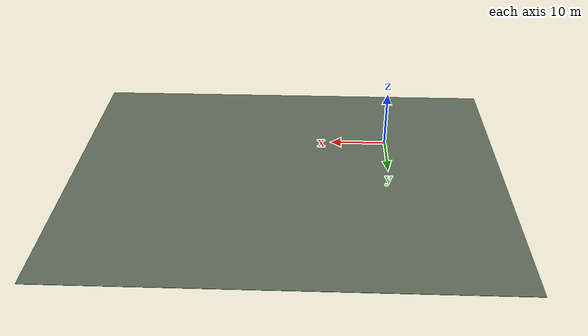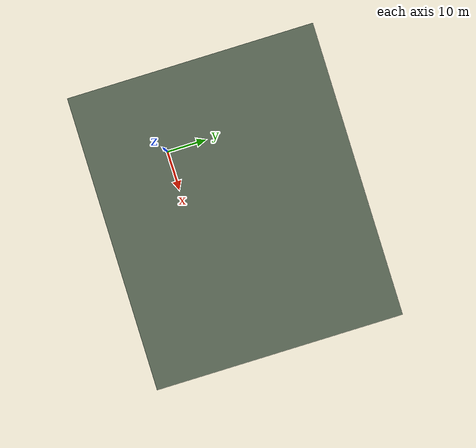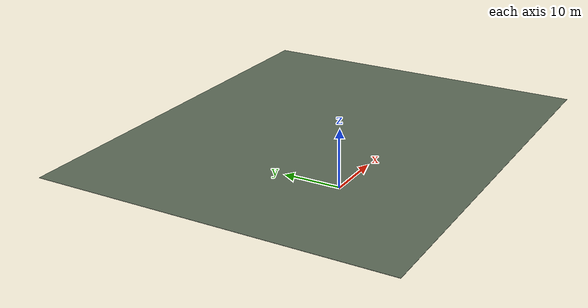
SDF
<sdf version="1.9">
 <world name="uco_warehouse">
  <model name="floor">
   <static>true</static>
   <link name="link">
    <collision name="c">
     <geometry><plane><normal>0 0 1</normal><size>76.0 64.0</size></plane></geometry>
     <surface><friction><ode><mu>1.0</mu><mu2>1.0</mu2></ode></friction></surface>
    </collision>
    <visual name="concrete">
     <pose>18.00 12.00 0 0 0 0</pose>
     <geometry><plane><normal>0 0 1</normal><size>36.40 24.40</size></plane></geometry>
     <material><ambient>0.62 0.63 0.62 1</ambient><diffuse>0.62 0.63 0.62 1</diffuse></material>
    </visual>
    <visual name="yard">
     <pose>18.00 12.00 -0.01 0 0 0</pose>
     <geometry><plane><normal>0 0 1</normal><size>76.0 64.0</size></plane></geometry>
     <material><ambient>0.350 0.400 0.330 1</ambient><diffuse>0.350 0.400 0.330 1</diffuse></material>
    </visual>
   </link>
  </model>
 </world>
</sdf>
